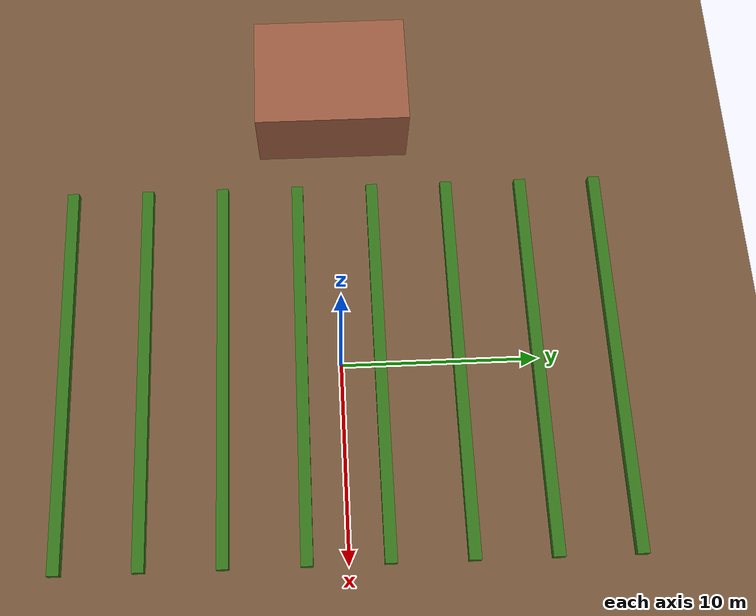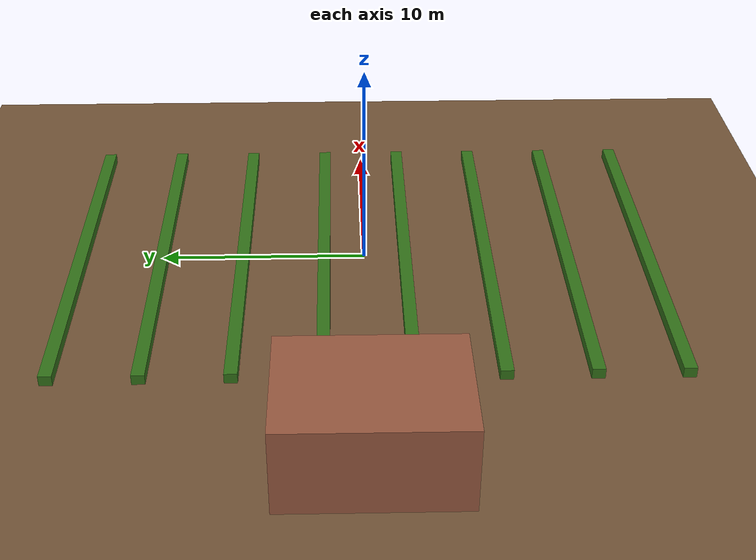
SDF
<sdf version="1.9">
 <world name="farm_field">
  <physics name="1ms" type="ignore">
   <max_step_size>0.001</max_step_size>
   <real_time_factor>1.0</real_time_factor>
  </physics>
  <plugin filename="gz-sim-physics-system" name="gz::sim::systems::Physics"/>
  <plugin filename="gz-sim-sensors-system" name="gz::sim::systems::Sensors">
   <render_engine>ogre2</render_engine>
  </plugin>
  <plugin filename="gz-sim-user-commands-system" name="gz::sim::systems::UserCommands"/>
  <plugin filename="gz-sim-scene-broadcaster-system" name="gz::sim::systems::SceneBroadcaster"/>
  <plugin filename="gz-sim-imu-system" name="gz::sim::systems::Imu"/>
  <plugin filename="gz-sim-navsat-system" name="gz::sim::systems::NavSat"/>
  <scene><ambient>1.0 1.0 1.0</ambient><background>0.7 0.8 0.9</background></scene>
  <spherical_coordinates>
   <latitude_deg>-35.363262</latitude_deg>
   <longitude_deg>149.165237</longitude_deg>
   <elevation>584</elevation>
   <heading_deg>0</heading_deg>
   <surface_model>EARTH_WGS84</surface_model>
  </spherical_coordinates>
  <light type="directional" name="sun">
   <pose>0 0 10 0 0 0</pose>
   <diffuse>0.9 0.9 0.9 1</diffuse>
   <specular>0.3 0.3 0.3 1</specular>
   <attenuation>
    <range>1000</range>
    <constant>0.9</constant>
    <linear>0.01</linear>
    <quadratic>0.001</quadratic>
   </attenuation>
   <direction>-0.4 0.2 -0.9</direction>
  </light>
  <model name="field_ground">
   <static>true</static>
   <link name="link">
    <collision name="collision">
     <geometry><plane><normal>0 0 1</normal><size>200 200</size></plane></geometry>
    </collision>
    <visual name="visual">
     <geometry><plane><normal>0 0 1</normal><size>200 200</size></plane></geometry>
     <material><ambient>0.40 0.30 0.20 1</ambient><diffuse>0.45 0.33 0.22 1</diffuse></material>
    </visual>
   </link>
  </model>
  <model name="crop_row_0">
   <static>true</static>
   <pose>0 -14 0.25 0 0 0</pose>
   <link name="l">
    <collision name="c"><geometry><box><size>20 0.6 0.5</size></box></geometry></collision>
    <visual name="v">
     <geometry><box><size>20 0.6 0.5</size></box></geometry>
     <material><ambient>0.15 0.35 0.08 1</ambient><diffuse>0.20 0.45 0.10 1</diffuse></material>
    </visual>
   </link>
  </model>
  <model name="crop_row_1">
   <static>true</static>
   <pose>0 -10 0.25 0 0 0</pose>
   <link name="l">
    <collision name="c"><geometry><box><size>20 0.6 0.5</size></box></geometry></collision>
    <visual name="v">
     <geometry><box><size>20 0.6 0.5</size></box></geometry>
     <material><ambient>0.15 0.35 0.08 1</ambient><diffuse>0.20 0.45 0.10 1</diffuse></material>
    </visual>
   </link>
  </model>
  <model name="crop_row_2">
   <static>true</static>
   <pose>0 -6 0.25 0 0 0</pose>
   <link name="l">
    <collision name="c"><geometry><box><size>20 0.6 0.5</size></box></geometry></collision>
    <visual name="v">
     <geometry><box><size>20 0.6 0.5</size></box></geometry>
     <material><ambient>0.15 0.35 0.08 1</ambient><diffuse>0.20 0.45 0.10 1</diffuse></material>
    </visual>
   </link>
  </model>
  <model name="crop_row_3">
   <static>true</static>
   <pose>0 -2 0.25 0 0 0</pose>
   <link name="l">
    <collision name="c"><geometry><box><size>20 0.6 0.5</size></box></geometry></collision>
    <visual name="v">
     <geometry><box><size>20 0.6 0.5</size></box></geometry>
     <material><ambient>0.15 0.35 0.08 1</ambient><diffuse>0.20 0.45 0.10 1</diffuse></material>
    </visual>
   </link>
  </model>
  <model name="crop_row_4">
   <static>true</static>
   <pose>0 2 0.25 0 0 0</pose>
   <link name="l">
    <collision name="c"><geometry><box><size>20 0.6 0.5</size></box></geometry></collision>
    <visual name="v">
     <geometry><box><size>20 0.6 0.5</size></box></geometry>
     <material><ambient>0.15 0.35 0.08 1</ambient><diffuse>0.20 0.45 0.10 1</diffuse></material>
    </visual>
   </link>
  </model>
  <model name="crop_row_5">
   <static>true</static>
   <pose>0 6 0.25 0 0 0</pose>
   <link name="l">
    <collision name="c"><geometry><box><size>20 0.6 0.5</size></box></geometry></collision>
    <visual name="v">
     <geometry><box><size>20 0.6 0.5</size></box></geometry>
     <material><ambient>0.15 0.35 0.08 1</ambient><diffuse>0.20 0.45 0.10 1</diffuse></material>
    </visual>
   </link>
  </model>
  <model name="crop_row_6">
   <static>true</static>
   <pose>0 10 0.25 0 0 0</pose>
   <link name="l">
    <collision name="c"><geometry><box><size>20 0.6 0.5</size></box></geometry></collision>
    <visual name="v">
     <geometry><box><size>20 0.6 0.5</size></box></geometry>
     <material><ambient>0.15 0.35 0.08 1</ambient><diffuse>0.20 0.45 0.10 1</diffuse></material>
    </visual>
   </link>
  </model>
  <model name="crop_row_7">
   <static>true</static>
   <pose>0 14 0.25 0 0 0</pose>
   <link name="l">
    <collision name="c"><geometry><box><size>20 0.6 0.5</size></box></geometry></collision>
    <visual name="v">
     <geometry><box><size>20 0.6 0.5</size></box></geometry>
     <material><ambient>0.15 0.35 0.08 1</ambient><diffuse>0.20 0.45 0.10 1</diffuse></material>
    </visual>
   </link>
  </model>
  <model name="barn">
   <static>true</static>
   <pose>-15 0 2 0 0 0</pose>
   <link name="link">
    <collision name="collision"><geometry><box><size>6 8 4</size></box></geometry></collision>
    <visual name="visual">
     <geometry><box><size>6 8 4</size></box></geometry>
     <material><ambient>0.5 0.3 0.2 1</ambient><diffuse>0.6 0.35 0.25 1</diffuse></material>
    </visual>
   </link>
  </model>
 </world>
</sdf>
